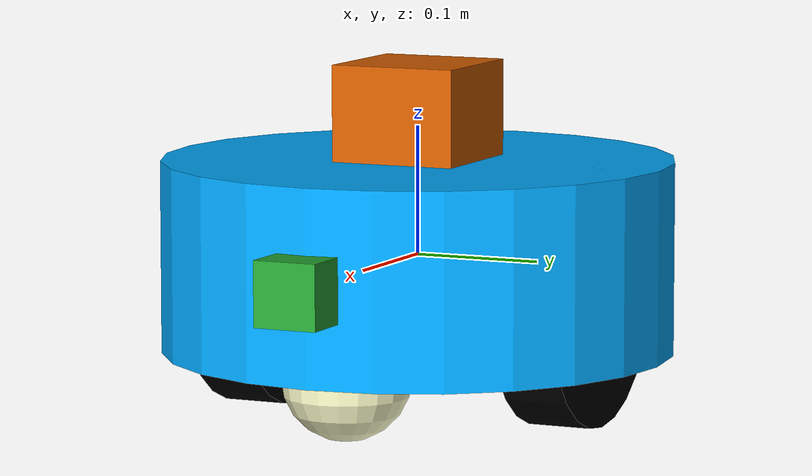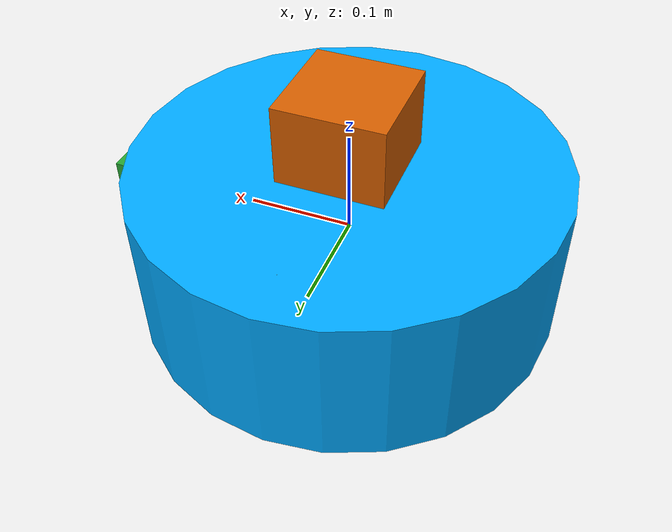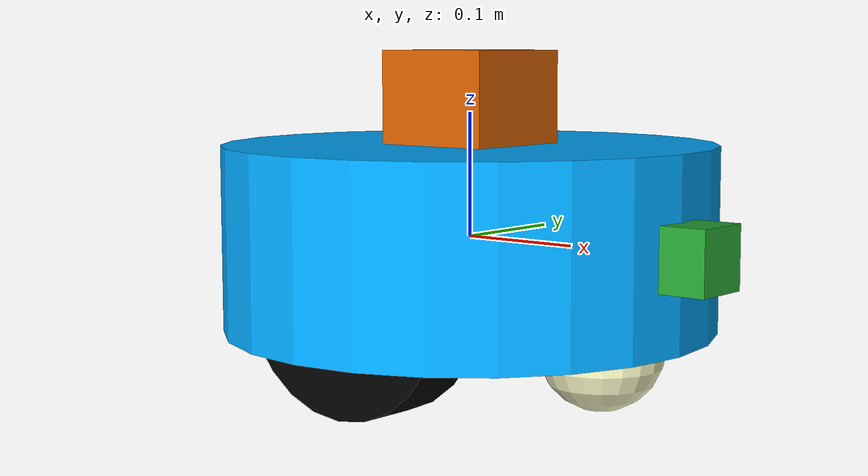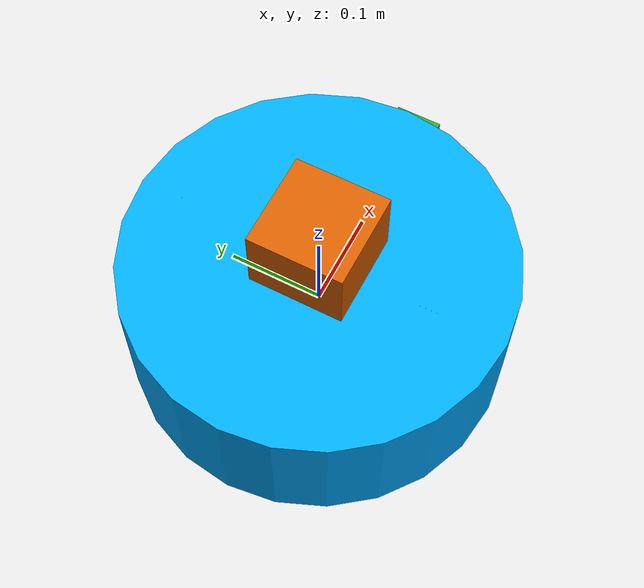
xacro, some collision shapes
<?xml version='1.0'?>

<robot name="roborock" xmlns:xacro="http://www.ros.org/wiki/xacro">

    <xacro:include filename="$(find roborock)/urdf/roborock.gazebo"/>

    <material name="light_blue">
        <color rgba="0 170 255 1"/>
    </material>

    <material name="black">
        <color rgba="0 0 0 1"/>
    </material>

    <material name="slightly_yellow">
        <color rgba="255 255 204 1"/>
    </material>

    <link name="robot_footprint"></link>

    <joint name="robot_footprint_joint" type="fixed">
        <origin xyz="0 0 0" rpy="0 0 0"/>
        <parent link="robot_footprint"/>
        <child link="chassis"/>
    </joint>

    <link name='chassis'>
        <pose>0 0 0.1 0 0 0</pose>

        <inertial>
            <mass value="15.0"/>
            <origin xyz="0.0 0 0" rpy=" 0 0 0"/>
            <inertia ixx="0.1" ixy="0" ixz="0" iyy="0.1" iyz="0" izz="0.1"/>
        </inertial>

        <collision name='collision'>
            <origin xyz="0 0 0" rpy=" 0 0 0"/>
            <geometry>
                <cylinder radius="0.2" length="0.15"/>
            </geometry>
        </collision>

        <visual name='chassis_visual'>
            <origin xyz="0 0 0" rpy=" 0 0 0"/>
            <geometry>
                <cylinder radius="0.2" length="0.15"/>
            </geometry>
            <material name="light_blue"/>
        </visual>

        <collision name='back_caster_collision'>
            <origin xyz="-0.13 0 -0.075" rpy=" 0 0 0"/>
            <geometry>
                <sphere radius="0.0499"/>
            </geometry>
        </collision>

        <visual name='back_caster_visual'>
            <origin xyz="-0.13 0 -0.075" rpy=" 0 0 0"/>
            <geometry>
                <sphere radius="0.05"/>
            </geometry>
            <material name="slightly_yellow"/>
        </visual>

        <collision name='front_caster_collision'>
            <origin xyz="0.13 0 -0.075" rpy=" 0 0 0"/>
            <geometry>
                <sphere radius="0.0499"/>
            </geometry>
        </collision>

        <visual name='front_caster_visual'>
            <origin xyz="0.13 0 -0.075" rpy=" 0 0 0"/>
            <geometry>
                <sphere radius="0.05"/>
            </geometry>
            <material name="slightly_yellow"/>
        </visual>
    </link>

    <joint type="continuous" name="left_wheel_hinge">
        <origin xyz="0 0.13 -0.025" rpy="0 0 0"/>
        <child link="left_wheel"/>
        <parent link="chassis"/>
        <axis xyz="0 1 0" rpy="0 0 0"/>
        <limit effort="10000" velocity="1000"/>
        <dynamics damping="1.0" friction="1.0"/>
    </joint>

    <link name='left_wheel'>
        <inertial>
            <mass value="5.0"/>
            <origin xyz="0.0 0 0" rpy=" 0 1.5707 1.5707"/>
            <inertia ixx="0.1" ixy="0" ixz="0" iyy="0.1" iyz="0" izz="0.1"/>
        </inertial>

        <collision name='left_wheel_collision'>
            <origin xyz="0.0 0 0" rpy=" 0 1.5707 1.5707"/>
            <geometry>
                <cylinder radius="0.1" length="0.05"/>
            </geometry>
        </collision>

        <visual name='left_wheel_visual'>
            <origin xyz="0.0 0 0" rpy=" 0 1.5707 1.5707"/>
            <geometry>
                <cylinder radius="0.1" length="0.05"/>
            </geometry>
            <material name="black"/>
        </visual>
    </link>

    <joint type="continuous" name="right_wheel_hinge">
        <origin xyz="0 -0.13 -0.025" rpy="0 0 0"/>
        <child link="right_wheel"/>
        <parent link="chassis"/>
        <axis xyz="0 1 0" rpy="0 0 0"/>
        <limit effort="10000" velocity="1000"/>
        <dynamics damping="1.0" friction="1.0"/>
    </joint>

    <link name='right_wheel'>
        <inertial>
            <mass value="5.0"/>
            <origin xyz="0.0 0 0" rpy=" 0 1.5707 1.5707"/>
            <inertia ixx="0.1" ixy="0" ixz="0" iyy="0.1" iyz="0" izz="0.1"/>
        </inertial>

        <collision name='right_wheel_collision'>
            <origin xyz="0.0 0 0" rpy=" 0 1.5707 1.5707"/>
            <geometry>
                <cylinder radius="0.1" length="0.05"/>
            </geometry>
        </collision>

        <visual name='right_wheel_visual'>
            <origin xyz="0.0 0 0" rpy=" 0 1.5707 1.5707"/>
            <geometry>
                <cylinder radius="0.1" length="0.05"/>
            </geometry>
            <material name="black"/>
        </visual>
    </link>

    <link name='camera'>
        <inertial>
            <mass value="0.1"/>
            <origin xyz="0.0 0 0" rpy=" 0 0 0"/>
            <inertia ixx="1e-6" ixy="0" ixz="0" iyy="1e-6" iyz="0" izz="1e-6"/>
        </inertial>

        <collision name='camera_collision'>
            <origin xyz="0.0 0 0" rpy=" 0 0 0"/>
            <geometry>
                <box size=".05 .05 .05"/>
            </geometry>
        </collision>

        <visual name='camera_visual'>
            <origin xyz="0.0 0 0" rpy=" 0 0 0"/>
            <geometry>
                <box size=".05 .05 .05"/>
            </geometry>
        </visual>
    </link>

    <joint type="fixed" name="camera_joint">
        <origin xyz="0.21 0 0" rpy="0 0 0"/>
        <child link="camera"/>
        <parent link="chassis"/>
    </joint>

    <link name='hokuyo'>
        <inertial>
            <mass value="0.1"/>
            <origin xyz="0.0 0 0" rpy=" 0 0 0"/>
            <inertia ixx="1e-6" ixy="0" ixz="0" iyy="1e-6" iyz="0" izz="1e-6"/>
        </inertial>

        <collision name='hokuyo_collision'>
            <origin xyz="0.0 0 0" rpy=" 0 0 0"/>
            <geometry>
                <box size=".1 .1 .1"/>
            </geometry>
        </collision>

        <visual name='hokuyo_visual'>
            <origin xyz="0.0 0 0" rpy=" 0 0 0"/>
            <geometry>
                <mesh filename="package://roborock/meshes/hokuyo.dae"/>
            </geometry>
        </visual>
    </link>

    <joint type="fixed" name="hokuyo_joint">
        <origin xyz="0 0 .1" rpy="0 0 0"/>
        <child link="hokuyo"/>
        <parent link="chassis"/>
    </joint>

</robot>
